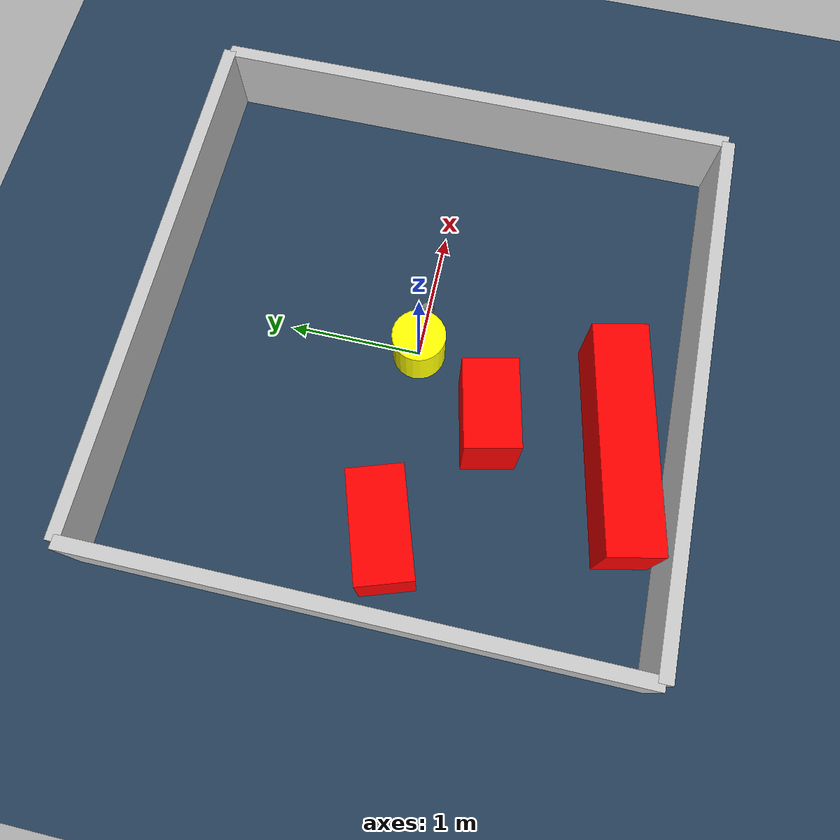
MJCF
<?xml version="1.0" ?>
<mujoco model="generated_environment">
  <option timestep="0.01" integrator="RK4" cone="elliptic"/>
  <default>
    <geom density="1"/>
  </default>
  <asset>
    <texture builtin="gradient" height="3072" rgb1="0.3 0.5 0.7" rgb2="0 0 0" type="skybox" width="512"/>
    <texture builtin="checker" height="300" mark="edge" markrgb="0.8 0.8 0.8" name="groundplane" rgb1="0.2 0.3 0.4" rgb2="0.1 0.2 0.3" type="2d" width="300"/>
    <material name="groundplane" reflectance="0.2" texrepeat="5 5" texture="groundplane" texuniform="true"/>
    <material name="robot" rgba="0.0 1.0 0.0 1"/>
  </asset>
  <worldbody>
    <light dir="0 0 -1" directional="true" pos="0 0 1.5"/>
    <geom condim="4" friction="1.0 0.005 0.001" material="groundplane" name="floor" size="0 0 0.05" type="plane"/>
    <body name="walls">
      <geom name="wall_1" condim="4" pos="-2.0 0.0 0.3" rgba="0.800000011920929 0.800000011920929 0.800000011920929 1.0" size="0.05 2.0 0.3" type="box"/>
      <geom name="wall_2" condim="4" pos="2.0 0.0 0.3" rgba="0.800000011920929 0.800000011920929 0.800000011920929 1.0" size="0.05 2.0 0.3" type="box"/>
      <geom name="wall_3" condim="4" pos="0.0 -2.0 0.3" rgba="0.800000011920929 0.800000011920929 0.800000011920929 1.0" size="2.0 0.05 0.3" type="box"/>
      <geom name="wall_4" condim="4" pos="0.0 2.0 0.3" rgba="0.800000011920929 0.800000011920929 0.800000011920929 1.0" size="2.0 0.05 0.3" type="box"/>
    </body>
    <body name="robot">
      <joint name="joint_x" type="slide" pos="0 0 0" axis="1 0 0"/>
      <joint name="joint_y" type="slide" pos="0 0 0" axis="0 1 0"/>
      <geom name="robot" type="sphere" pos="0.3 0.0 0.2" size="0.05" mass="5." friction="1.0 0.005 0.0001" condim="4" rgba="0.5 0.5 0.5 1.0"/>
      <site name="sensor_ball"/>
    </body>
    <body name="obstacle_movable_1">
      <geom name="obstacle_movable_1" condim="4" pos="0.0 0.0 0.2" euler="0 0 0.0" friction="1.0 0.005 0.001" rgba="1.0 1.0 0.0 1.0" size="0.2 0.2 0.0" type="cylinder" mass="0.1"/>
      <joint type="free"/>
    </body>
    <body name="obstacle_2_static">
      <geom name="obstacle_2_static" condim="4" pos="-1.4251623677355518 -0.051405675046885424 0.3" euler="0 0 18.279636061339083" friction="1.0 0.005 0.001" rgba="1 0 0 1" size="0.38805917601558343 0.2 0.3" type="box"/>
    </body>
    <body name="obstacle_3_static">
      <geom name="obstacle_3_static" condim="4" pos="-0.47957499851591945 -1.5600995005670566 0.3" euler="0 0 191.7811403939458" friction="1.0 0.005 0.001" rgba="1 0 0 1" size="0.8146842657199467 0.2 0.3" type="box"/>
    </body>
    <body name="obstacle_4_static">
      <geom name="obstacle_4_static" condim="4" pos="-0.45359099715749585 -0.6137603126259821 0.3" euler="0 0 12.453177320723313" friction="1.0 0.005 0.001" rgba="1 0 0 1" size="0.32462927330228314 0.2 0.3" type="box"/>
    </body>
  </worldbody>
  <actuator>
    <motor name="actuator_x" joint="joint_x" gear="1" ctrlrange="-1 1"/>
    <motor name="actuator_y" joint="joint_y" gear="1" ctrlrange="-1 1"/>
  </actuator>
</mujoco>
